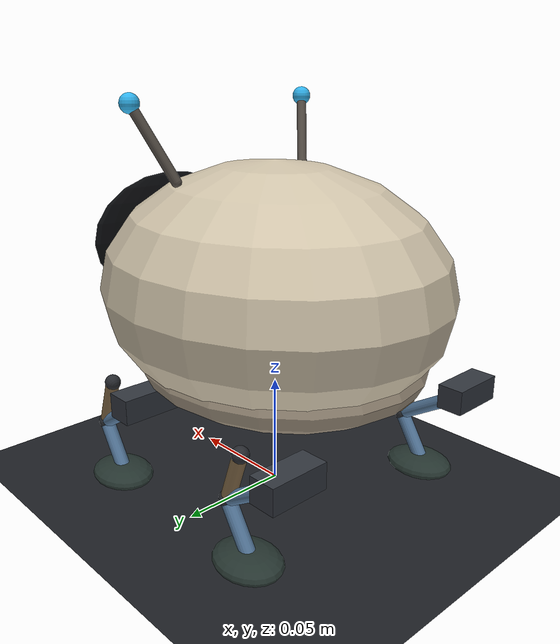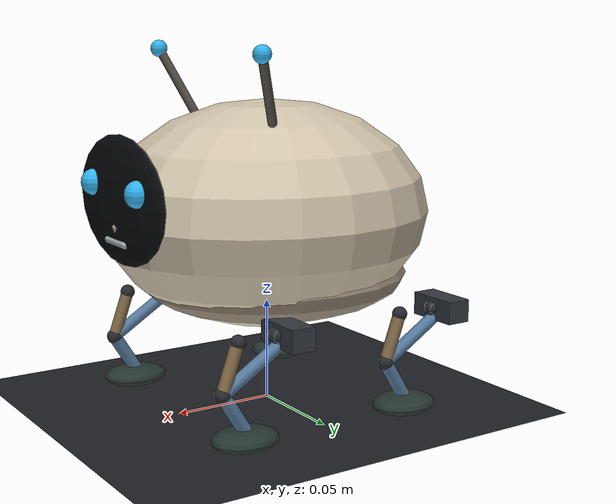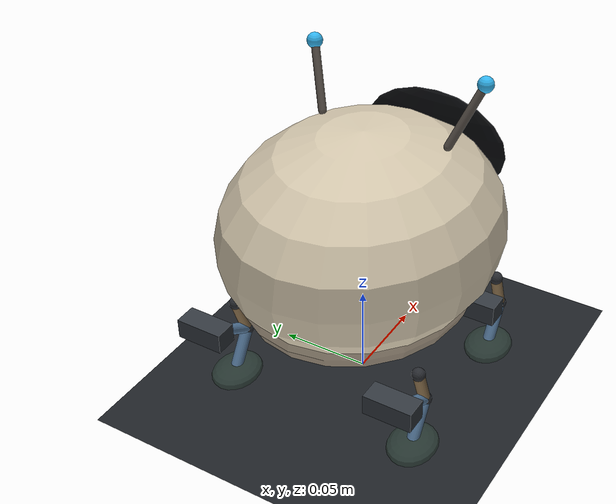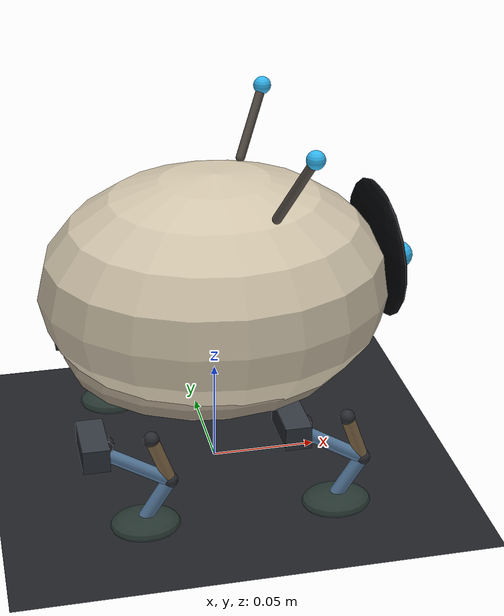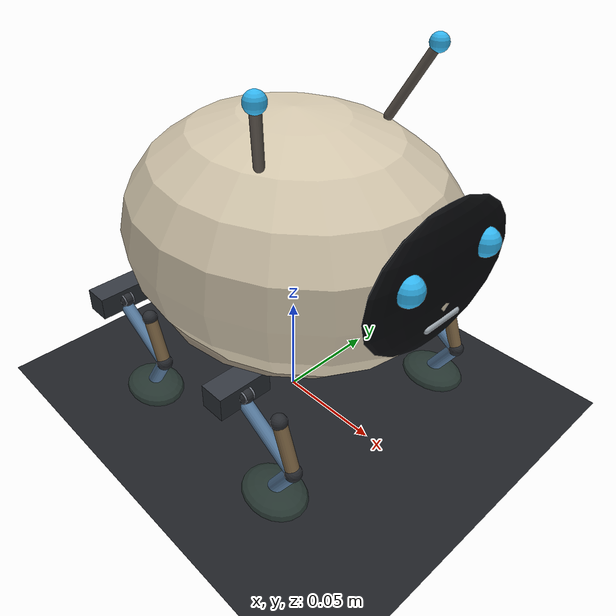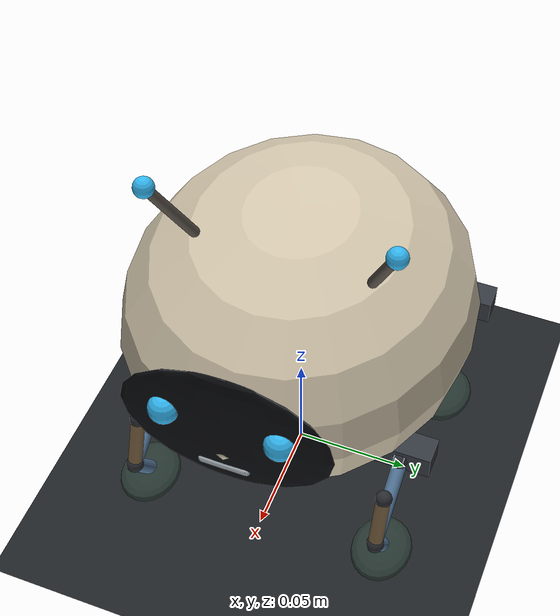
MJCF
<mujoco model="pebble_v1_2">
  <compiler angle="radian" autolimits="true"/>

  <option timestep="0.002" gravity="0 0 -9.81" integrator="implicitfast"
          iterations="100" ls_iterations="30" cone="elliptic"/>

  <visual>
    <quality shadowsize="2048"/>
    <headlight ambient="0.16 0.17 0.19" diffuse="0.58 0.59 0.62" specular="0.10 0.10 0.10"/>
    <rgba haze="0.055 0.060 0.070 1"/>
    <global azimuth="135" elevation="-22"/>
  </visual>

  <asset>
    <texture name="sky" type="skybox" builtin="gradient"
             rgb1="0.055 0.065 0.080" rgb2="0.14 0.15 0.17"
             width="512" height="3072"/>

    <texture name="grid_tex" type="2d" builtin="checker"
             rgb1="0.095 0.105 0.120" rgb2="0.145 0.155 0.175"
             width="512" height="512"/>
    <material name="grid_mat" texture="grid_tex" texrepeat="28 28"
              reflectance="0.04" shininess="0.05" specular="0.08"/>

    <material name="shell_mat" rgba="0.83 0.78 0.68 1" specular="0.22" shininess="0.30"/>
    <material name="shell_trim" rgba="0.57 0.52 0.45 1" specular="0.16" shininess="0.22"/>
    <material name="face_mat" rgba="0.035 0.040 0.050 1" specular="0.50" shininess="0.75"/>
    <material name="eye_mat" rgba="0.20 0.72 0.95 1" emission="0.16" specular="0.55" shininess="0.80"/>
    <material name="motor_mat" rgba="0.20 0.22 0.25 1" specular="0.32" shininess="0.45"/>
    <material name="metal_mat" rgba="0.48 0.50 0.54 1" specular="0.55" shininess="0.70"/>
    <material name="joint_mat" rgba="0.16 0.17 0.19 1" specular="0.45" shininess="0.65"/>
    <material name="link_dark" rgba="0.30 0.32 0.35 1" specular="0.20" shininess="0.30"/>
    <material name="link_mid" rgba="0.34 0.48 0.62 1" specular="0.18" shininess="0.28"/>
    <material name="link_warm" rgba="0.53 0.43 0.29 1" specular="0.18" shininess="0.28"/>
    <material name="foot_mat" rgba="0.15 0.21 0.19 1" specular="0.08" shininess="0.10"/>
  </asset>

  <worldbody>
    <light name="key" pos="0.15 -0.55 0.70" dir="-0.15 0.55 -1"
           directional="true" diffuse="0.74 0.73 0.70" specular="0.18 0.18 0.18"/>
    <light name="fill" pos="-0.35 0.40 0.42" dir="0.3 -0.35 -0.7"
           directional="true" diffuse="0.28 0.31 0.38" specular="0.04 0.04 0.05"/>

    <geom name="floor" type="plane" size="2.0 2.0 0.05"
          material="grid_mat" friction="1.05 0.03 0.003"
          solref="0.020 1" solimp="0.88 0.96 0.002" condim="6"/>

    <body name="pebble" pos="0 0 0.095">
      <freejoint name="root_free"/>

      <geom name="shell_visual" type="ellipsoid"
            size="0.0825 0.0725 0.055"
            material="shell_mat" mass="0.1" contype="0" conaffinity="0"/>

      <geom name="shell_collision" type="ellipsoid"
            size="0.0792 0.0696 0.05225"
            rgba="0 0 0 0" mass="0" friction="0.55 0.02 0.002"
            contype="1" conaffinity="1"/>

      <geom type="ellipsoid" pos="-0.004 0 -0.031" size="0.068 0.061 0.021"
            material="shell_trim" mass="0" contype="0" conaffinity="0"/>

      <geom type="ellipsoid" pos="0.078 0 0.012" size="0.0045 0.043 0.030"
            material="face_mat" mass="0" contype="0" conaffinity="0"/>
      <geom type="sphere" pos="0.081 0.023 0.018" size="0.0062"
            material="eye_mat" mass="0" contype="0" conaffinity="0"/>
      <geom type="sphere" pos="0.081 -0.023 0.018" size="0.0062"
            material="eye_mat" mass="0" contype="0" conaffinity="0"/>
      <geom type="capsule" fromto="0.081 -0.009 -0.007 0.081 0.009 -0.007"
            size="0.0016" rgba="0.65 0.69 0.72 1" mass="0" contype="0" conaffinity="0"/>

      <geom type="capsule" fromto="0.020 0.036 0.047 0.033 0.048 0.078"
            size="0.0022" rgba="0.34 0.31 0.28 1" mass="0" contype="0" conaffinity="0"/>
      <geom type="capsule" fromto="0.020 -0.036 0.047 0.033 -0.048 0.078"
            size="0.0022" rgba="0.34 0.31 0.28 1" mass="0" contype="0" conaffinity="0"/>
      <geom type="sphere" pos="0.033 0.048 0.078" size="0.0042"
            material="eye_mat" mass="0" contype="0" conaffinity="0"/>
      <geom type="sphere" pos="0.033 -0.048 0.078" size="0.0042"
            material="eye_mat" mass="0" contype="0" conaffinity="0"/>

      <geom name="low_chassis_mass" type="box" pos="-0.005 0 -0.02"
            size="0.055 0.045 0.010" rgba="0 0 0 0"
            mass="0.3" contype="0" conaffinity="0"/>
      <geom name="battery" type="box" pos="-0.005 0 -0.027" size="0.042 0.033 0.011"
            rgba="0 0 0 0" mass="0.120" contype="0" conaffinity="0"/>
      <geom name="electronics" type="box" pos="-0.005 0 -0.004" size="0.036 0.029 0.004"
            rgba="0 0 0 0" mass="0.040" contype="0" conaffinity="0"/>
      <geom name="display_mass" type="box" pos="0.067 0 0.012" size="0.003 0.032 0.022"
            rgba="0 0 0 0" mass="0.016" contype="0" conaffinity="0"/>

      <site name="imu_site" pos="-0.005 0 -0.005" size="0.003" rgba="1 0.5 0 0.5"/>

      <body name="FL_mount" pos="0.03 0.055 -0.0457">

        <geom name="FL_motor_housing" type="box"
              size="0.006 0.013 0.0055" pos="-0.006 0 0"
              material="motor_mat" mass="0.011"
              contype="0" conaffinity="0"/>

        <geom type="cylinder" pos="0 0 0" size="0.003 0.0025"
              quat="0.70710678 0.70710678 0 0"
              material="metal_mat" mass="0" contype="0" conaffinity="0"/>

        <body name="FL_crank" quat="-0.27144045 0 -0.962455236 0">
          <joint name="FL_crank_joint" type="hinge" axis="0 1 0"
                 damping="0.0008" armature="0.000003"/>

          <geom name="FL_crank_geom" type="capsule"
                fromto="0 0 0 0.005 0 0" size="0.0028"
                material="link_dark" mass="0.003" contype="0" conaffinity="0"/>
          <geom type="sphere" pos="0 0 0" size="0.0035"
                material="joint_mat" mass="0" contype="0" conaffinity="0"/>
          <site name="FL_crank_load_site" pos="0 0 0" size="0.001" rgba="0 0 0 0"/>

          <body name="FL_coupler" pos="0.005 0 0"
                quat="-0.524374219 0 0.851487921 0">
            <joint name="FL_coupler_joint" type="hinge" axis="0 1 0" damping="0.0005"/>

            <geom name="FL_coupler_geom" type="capsule"
                  fromto="0 0 0 0.038 0 0" size="0.0031"
                  material="link_mid" mass="0.004" contype="0" conaffinity="0"/>

            <geom name="FL_carrier_geom" type="capsule"
                  fromto="0.038 0 0 0.038 0 -0.022"
                  size="0.0033" material="link_mid" mass="0.002"
                  contype="0" conaffinity="0"/>

            <geom type="sphere" pos="0.038 0 0" size="0.0038"
                  material="joint_mat" mass="0" contype="0" conaffinity="0"/>

            <site name="FL_coupler_load_site" pos="0 0 0" size="0.001" rgba="0 0 0 0"/>
            <site name="FL_coupler_B" pos="0.038 0 0" size="0.0015" rgba="0.9 0.2 0.2 1"/>

            <body name="FL_foot" pos="0.038 0 -0.022"
                  quat="0.961855382 0 -0.273558448 0">
              <joint name="FL_ankle_joint" type="hinge" axis="0 1 0"
                     range="-0.314159265 0.314159265"
                     limited="true" damping="0.006"
                     stiffness="0.035" springref="0"/>

              <site name="FL_ankle_load_site" pos="0 0 0" size="0.001" rgba="0 0 0 0"/>
              <site name="FL_foot_center" pos="0 0 -0.0035"
                    size="0.002" rgba="0.1 0.7 0.1 0.35"/>

              <geom name="FL_foot_visual" type="ellipsoid"
                    pos="0 0 -0.0035"
                    size="0.0162 0.01296 0.005075"
                    material="foot_mat" mass="0.008" contype="0" conaffinity="0"/>

              <geom name="FL_foot_geom" type="box"
                    pos="0 0 -0.0035"
                    size="0.015 0.012 0.0035"
                    rgba="0 0 0 0" mass="0"
                    friction="1.05 0.03 0.003"
                    solref="0.020 1" solimp="0.88 0.96 0.002"
                    contype="1" conaffinity="1" condim="6"/>
            </body>
          </body>
        </body>

        <body name="FL_rocker" pos="0.02 0 0"
              quat="0.817126547 0 0.57645833 0">
          <joint name="FL_rocker_joint" type="hinge" axis="0 1 0" damping="0.0005"/>
          <geom name="FL_rocker_geom" type="capsule"
                fromto="0 0 0 0.024 0 0" size="0.0031"
                material="link_warm" mass="0.003" contype="0" conaffinity="0"/>
          <geom type="sphere" pos="0 0 0" size="0.0036"
                material="joint_mat" mass="0" contype="0" conaffinity="0"/>
          <site name="FL_rocker_load_site" pos="0 0 0" size="0.001" rgba="0 0 0 0"/>
          <site name="FL_rocker_B" pos="0.024 0 0" size="0.0015" rgba="0.9 0.2 0.2 1"/>
        </body>
      </body>

      <body name="FR_mount" pos="0.03 -0.055 -0.0457">

        <geom name="FR_motor_housing" type="box"
              size="0.006 0.013 0.0055" pos="-0.006 0 0"
              material="motor_mat" mass="0.011"
              contype="0" conaffinity="0"/>

        <geom type="cylinder" pos="0 0 0" size="0.003 0.0025"
              quat="0.70710678 0.70710678 0 0"
              material="metal_mat" mass="0" contype="0" conaffinity="0"/>

        <body name="FR_crank" quat="-0.27144045 0 -0.962455236 0">
          <joint name="FR_crank_joint" type="hinge" axis="0 1 0"
                 damping="0.0008" armature="0.000003"/>

          <geom name="FR_crank_geom" type="capsule"
                fromto="0 0 0 0.005 0 0" size="0.0028"
                material="link_dark" mass="0.003" contype="0" conaffinity="0"/>
          <geom type="sphere" pos="0 0 0" size="0.0035"
                material="joint_mat" mass="0" contype="0" conaffinity="0"/>
          <site name="FR_crank_load_site" pos="0 0 0" size="0.001" rgba="0 0 0 0"/>

          <body name="FR_coupler" pos="0.005 0 0"
                quat="-0.524374219 0 0.851487921 0">
            <joint name="FR_coupler_joint" type="hinge" axis="0 1 0" damping="0.0005"/>

            <geom name="FR_coupler_geom" type="capsule"
                  fromto="0 0 0 0.038 0 0" size="0.0031"
                  material="link_mid" mass="0.004" contype="0" conaffinity="0"/>

            <geom name="FR_carrier_geom" type="capsule"
                  fromto="0.038 0 0 0.038 0 -0.022"
                  size="0.0033" material="link_mid" mass="0.002"
                  contype="0" conaffinity="0"/>

            <geom type="sphere" pos="0.038 0 0" size="0.0038"
                  material="joint_mat" mass="0" contype="0" conaffinity="0"/>

            <site name="FR_coupler_load_site" pos="0 0 0" size="0.001" rgba="0 0 0 0"/>
            <site name="FR_coupler_B" pos="0.038 0 0" size="0.0015" rgba="0.9 0.2 0.2 1"/>

            <body name="FR_foot" pos="0.038 0 -0.022"
                  quat="0.961855382 0 -0.273558448 0">
              <joint name="FR_ankle_joint" type="hinge" axis="0 1 0"
                     range="-0.314159265 0.314159265"
                     limited="true" damping="0.006"
                     stiffness="0.035" springref="0"/>

              <site name="FR_ankle_load_site" pos="0 0 0" size="0.001" rgba="0 0 0 0"/>
              <site name="FR_foot_center" pos="0 0 -0.0035"
                    size="0.002" rgba="0.1 0.7 0.1 0.35"/>

              <geom name="FR_foot_visual" type="ellipsoid"
                    pos="0 0 -0.0035"
                    size="0.0162 0.01296 0.005075"
                    material="foot_mat" mass="0.008" contype="0" conaffinity="0"/>

              <geom name="FR_foot_geom" type="box"
                    pos="0 0 -0.0035"
                    size="0.015 0.012 0.0035"
                    rgba="0 0 0 0" mass="0"
                    friction="1.05 0.03 0.003"
                    solref="0.020 1" solimp="0.88 0.96 0.002"
                    contype="1" conaffinity="1" condim="6"/>
            </body>
          </body>
        </body>

        <body name="FR_rocker" pos="0.02 0 0"
              quat="0.817126547 0 0.57645833 0">
          <joint name="FR_rocker_joint" type="hinge" axis="0 1 0" damping="0.0005"/>
          <geom name="FR_rocker_geom" type="capsule"
                fromto="0 0 0 0.024 0 0" size="0.0031"
                material="link_warm" mass="0.003" contype="0" conaffinity="0"/>
          <geom type="sphere" pos="0 0 0" size="0.0036"
                material="joint_mat" mass="0" contype="0" conaffinity="0"/>
          <site name="FR_rocker_load_site" pos="0 0 0" size="0.001" rgba="0 0 0 0"/>
          <site name="FR_rocker_B" pos="0.024 0 0" size="0.0015" rgba="0.9 0.2 0.2 1"/>
        </body>
      </body>

      <body name="RL_mount" pos="-0.06 0.055 -0.0457">

        <geom name="RL_motor_housing" type="box"
              size="0.006 0.013 0.0055" pos="-0.006 0 0"
              material="motor_mat" mass="0.011"
              contype="0" conaffinity="0"/>

        <geom type="cylinder" pos="0 0 0" size="0.003 0.0025"
              quat="0.70710678 0.70710678 0 0"
              material="metal_mat" mass="0" contype="0" conaffinity="0"/>

        <body name="RL_crank" quat="-0.27144045 0 -0.962455236 0">
          <joint name="RL_crank_joint" type="hinge" axis="0 1 0"
                 damping="0.0008" armature="0.000003"/>

          <geom name="RL_crank_geom" type="capsule"
                fromto="0 0 0 0.005 0 0" size="0.0028"
                material="link_dark" mass="0.003" contype="0" conaffinity="0"/>
          <geom type="sphere" pos="0 0 0" size="0.0035"
                material="joint_mat" mass="0" contype="0" conaffinity="0"/>
          <site name="RL_crank_load_site" pos="0 0 0" size="0.001" rgba="0 0 0 0"/>

          <body name="RL_coupler" pos="0.005 0 0"
                quat="-0.524374219 0 0.851487921 0">
            <joint name="RL_coupler_joint" type="hinge" axis="0 1 0" damping="0.0005"/>

            <geom name="RL_coupler_geom" type="capsule"
                  fromto="0 0 0 0.038 0 0" size="0.0031"
                  material="link_mid" mass="0.004" contype="0" conaffinity="0"/>

            <geom name="RL_carrier_geom" type="capsule"
                  fromto="0.038 0 0 0.038 0 -0.022"
                  size="0.0033" material="link_mid" mass="0.002"
                  contype="0" conaffinity="0"/>

            <geom type="sphere" pos="0.038 0 0" size="0.0038"
                  material="joint_mat" mass="0" contype="0" conaffinity="0"/>

            <site name="RL_coupler_load_site" pos="0 0 0" size="0.001" rgba="0 0 0 0"/>
            <site name="RL_coupler_B" pos="0.038 0 0" size="0.0015" rgba="0.9 0.2 0.2 1"/>

            <body name="RL_foot" pos="0.038 0 -0.022"
                  quat="0.961855382 0 -0.273558448 0">
              <joint name="RL_ankle_joint" type="hinge" axis="0 1 0"
                     range="-0.314159265 0.314159265"
                     limited="true" damping="0.006"
                     stiffness="0.035" springref="0"/>

              <site name="RL_ankle_load_site" pos="0 0 0" size="0.001" rgba="0 0 0 0"/>
              <site name="RL_foot_center" pos="0 0 -0.0035"
                    size="0.002" rgba="0.1 0.7 0.1 0.35"/>

              <geom name="RL_foot_visual" type="ellipsoid"
                    pos="0 0 -0.0035"
                    size="0.0162 0.01296 0.005075"
                    material="foot_mat" mass="0.008" contype="0" conaffinity="0"/>

              <geom name="RL_foot_geom" type="box"
                    pos="0 0 -0.0035"
                    size="0.015 0.012 0.0035"
                    rgba="0 0 0 0" mass="0"
                    friction="1.05 0.03 0.003"
                    solref="0.020 1" solimp="0.88 0.96 0.002"
                    contype="1" conaffinity="1" condim="6"/>
            </body>
          </body>
        </body>

        <body name="RL_rocker" pos="0.02 0 0"
              quat="0.817126547 0 0.57645833 0">
          <joint name="RL_rocker_joint" type="hinge" axis="0 1 0" damping="0.0005"/>
          <geom name="RL_rocker_geom" type="capsule"
                fromto="0 0 0 0.024 0 0" size="0.0031"
                material="link_warm" mass="0.003" contype="0" conaffinity="0"/>
          <geom type="sphere" pos="0 0 0" size="0.0036"
                material="joint_mat" mass="0" contype="0" conaffinity="0"/>
          <site name="RL_rocker_load_site" pos="0 0 0" size="0.001" rgba="0 0 0 0"/>
          <site name="RL_rocker_B" pos="0.024 0 0" size="0.0015" rgba="0.9 0.2 0.2 1"/>
        </body>
      </body>

      <body name="RR_mount" pos="-0.06 -0.055 -0.0457">

        <geom name="RR_motor_housing" type="box"
              size="0.006 0.013 0.0055" pos="-0.006 0 0"
              material="motor_mat" mass="0.011"
              contype="0" conaffinity="0"/>

        <geom type="cylinder" pos="0 0 0" size="0.003 0.0025"
              quat="0.70710678 0.70710678 0 0"
              material="metal_mat" mass="0" contype="0" conaffinity="0"/>

        <body name="RR_crank" quat="-0.27144045 0 -0.962455236 0">
          <joint name="RR_crank_joint" type="hinge" axis="0 1 0"
                 damping="0.0008" armature="0.000003"/>

          <geom name="RR_crank_geom" type="capsule"
                fromto="0 0 0 0.005 0 0" size="0.0028"
                material="link_dark" mass="0.003" contype="0" conaffinity="0"/>
          <geom type="sphere" pos="0 0 0" size="0.0035"
                material="joint_mat" mass="0" contype="0" conaffinity="0"/>
          <site name="RR_crank_load_site" pos="0 0 0" size="0.001" rgba="0 0 0 0"/>

          <body name="RR_coupler" pos="0.005 0 0"
                quat="-0.524374219 0 0.851487921 0">
            <joint name="RR_coupler_joint" type="hinge" axis="0 1 0" damping="0.0005"/>

            <geom name="RR_coupler_geom" type="capsule"
                  fromto="0 0 0 0.038 0 0" size="0.0031"
                  material="link_mid" mass="0.004" contype="0" conaffinity="0"/>

            <geom name="RR_carrier_geom" type="capsule"
                  fromto="0.038 0 0 0.038 0 -0.022"
                  size="0.0033" material="link_mid" mass="0.002"
                  contype="0" conaffinity="0"/>

            <geom type="sphere" pos="0.038 0 0" size="0.0038"
                  material="joint_mat" mass="0" contype="0" conaffinity="0"/>

            <site name="RR_coupler_load_site" pos="0 0 0" size="0.001" rgba="0 0 0 0"/>
            <site name="RR_coupler_B" pos="0.038 0 0" size="0.0015" rgba="0.9 0.2 0.2 1"/>

            <body name="RR_foot" pos="0.038 0 -0.022"
                  quat="0.961855382 0 -0.273558448 0">
              <joint name="RR_ankle_joint" type="hinge" axis="0 1 0"
                     range="-0.314159265 0.314159265"
                     limited="true" damping="0.006"
                     stiffness="0.035" springref="0"/>

              <site name="RR_ankle_load_site" pos="0 0 0" size="0.001" rgba="0 0 0 0"/>
              <site name="RR_foot_center" pos="0 0 -0.0035"
                    size="0.002" rgba="0.1 0.7 0.1 0.35"/>

              <geom name="RR_foot_visual" type="ellipsoid"
                    pos="0 0 -0.0035"
                    size="0.0162 0.01296 0.005075"
                    material="foot_mat" mass="0.008" contype="0" conaffinity="0"/>

              <geom name="RR_foot_geom" type="box"
                    pos="0 0 -0.0035"
                    size="0.015 0.012 0.0035"
                    rgba="0 0 0 0" mass="0"
                    friction="1.05 0.03 0.003"
                    solref="0.020 1" solimp="0.88 0.96 0.002"
                    contype="1" conaffinity="1" condim="6"/>
            </body>
          </body>
        </body>

        <body name="RR_rocker" pos="0.02 0 0"
              quat="0.817126547 0 0.57645833 0">
          <joint name="RR_rocker_joint" type="hinge" axis="0 1 0" damping="0.0005"/>
          <geom name="RR_rocker_geom" type="capsule"
                fromto="0 0 0 0.024 0 0" size="0.0031"
                material="link_warm" mass="0.003" contype="0" conaffinity="0"/>
          <geom type="sphere" pos="0 0 0" size="0.0036"
                material="joint_mat" mass="0" contype="0" conaffinity="0"/>
          <site name="RR_rocker_load_site" pos="0 0 0" size="0.001" rgba="0 0 0 0"/>
          <site name="RR_rocker_B" pos="0.024 0 0" size="0.0015" rgba="0.9 0.2 0.2 1"/>
        </body>
      </body>

    </body>
  </worldbody>

  <equality>
    <connect name="loop_FL" site1="FL_coupler_B" site2="FL_rocker_B" solref="0.0035 1" solimp="0.94 0.99 0.001"/>
    <connect name="loop_FR" site1="FR_coupler_B" site2="FR_rocker_B" solref="0.0035 1" solimp="0.94 0.99 0.001"/>
    <connect name="loop_RL" site1="RL_coupler_B" site2="RL_rocker_B" solref="0.0035 1" solimp="0.94 0.99 0.001"/>
    <connect name="loop_RR" site1="RR_coupler_B" site2="RR_rocker_B" solref="0.0035 1" solimp="0.94 0.99 0.001"/>
  </equality>

  <actuator>
    <motor name="motor_FL" joint="FL_crank_joint" gear="1" ctrllimited="true" ctrlrange="-0.0726 0.0726"/>
    <motor name="motor_FR" joint="FR_crank_joint" gear="1" ctrllimited="true" ctrlrange="-0.0726 0.0726"/>
    <motor name="motor_RL" joint="RL_crank_joint" gear="1" ctrllimited="true" ctrlrange="-0.0726 0.0726"/>
    <motor name="motor_RR" joint="RR_crank_joint" gear="1" ctrllimited="true" ctrlrange="-0.0726 0.0726"/>
  </actuator>

  <sensor>
    <accelerometer name="imu_accel" site="imu_site"/>
    <gyro name="imu_gyro" site="imu_site"/>
    <subtreecom name="robot_com" body="pebble"/>
    <jointpos name="FL_crank_pos" joint="FL_crank_joint"/>
    <jointvel name="FL_crank_vel" joint="FL_crank_joint"/>
    <actuatorfrc name="FL_motor_torque" actuator="motor_FL"/>
    <force name="FL_crank_force" site="FL_crank_load_site"/>
    <torque name="FL_crank_torque_sensor" site="FL_crank_load_site"/>
    <force name="FL_coupler_force" site="FL_coupler_load_site"/>
    <torque name="FL_coupler_torque_sensor" site="FL_coupler_load_site"/>
    <force name="FL_rocker_force" site="FL_rocker_load_site"/>
    <torque name="FL_rocker_torque_sensor" site="FL_rocker_load_site"/>
    <force name="FL_ankle_force" site="FL_ankle_load_site"/>
    <torque name="FL_ankle_torque_sensor" site="FL_ankle_load_site"/>
    <jointpos name="FR_crank_pos" joint="FR_crank_joint"/>
    <jointvel name="FR_crank_vel" joint="FR_crank_joint"/>
    <actuatorfrc name="FR_motor_torque" actuator="motor_FR"/>
    <force name="FR_crank_force" site="FR_crank_load_site"/>
    <torque name="FR_crank_torque_sensor" site="FR_crank_load_site"/>
    <force name="FR_coupler_force" site="FR_coupler_load_site"/>
    <torque name="FR_coupler_torque_sensor" site="FR_coupler_load_site"/>
    <force name="FR_rocker_force" site="FR_rocker_load_site"/>
    <torque name="FR_rocker_torque_sensor" site="FR_rocker_load_site"/>
    <force name="FR_ankle_force" site="FR_ankle_load_site"/>
    <torque name="FR_ankle_torque_sensor" site="FR_ankle_load_site"/>
    <jointpos name="RL_crank_pos" joint="RL_crank_joint"/>
    <jointvel name="RL_crank_vel" joint="RL_crank_joint"/>
    <actuatorfrc name="RL_motor_torque" actuator="motor_RL"/>
    <force name="RL_crank_force" site="RL_crank_load_site"/>
    <torque name="RL_crank_torque_sensor" site="RL_crank_load_site"/>
    <force name="RL_coupler_force" site="RL_coupler_load_site"/>
    <torque name="RL_coupler_torque_sensor" site="RL_coupler_load_site"/>
    <force name="RL_rocker_force" site="RL_rocker_load_site"/>
    <torque name="RL_rocker_torque_sensor" site="RL_rocker_load_site"/>
    <force name="RL_ankle_force" site="RL_ankle_load_site"/>
    <torque name="RL_ankle_torque_sensor" site="RL_ankle_load_site"/>
    <jointpos name="RR_crank_pos" joint="RR_crank_joint"/>
    <jointvel name="RR_crank_vel" joint="RR_crank_joint"/>
    <actuatorfrc name="RR_motor_torque" actuator="motor_RR"/>
    <force name="RR_crank_force" site="RR_crank_load_site"/>
    <torque name="RR_crank_torque_sensor" site="RR_crank_load_site"/>
    <force name="RR_coupler_force" site="RR_coupler_load_site"/>
    <torque name="RR_coupler_torque_sensor" site="RR_coupler_load_site"/>
    <force name="RR_rocker_force" site="RR_rocker_load_site"/>
    <torque name="RR_rocker_torque_sensor" site="RR_rocker_load_site"/>
    <force name="RR_ankle_force" site="RR_ankle_load_site"/>
    <torque name="RR_ankle_torque_sensor" site="RR_ankle_load_site"/>
  </sensor>
</mujoco>
